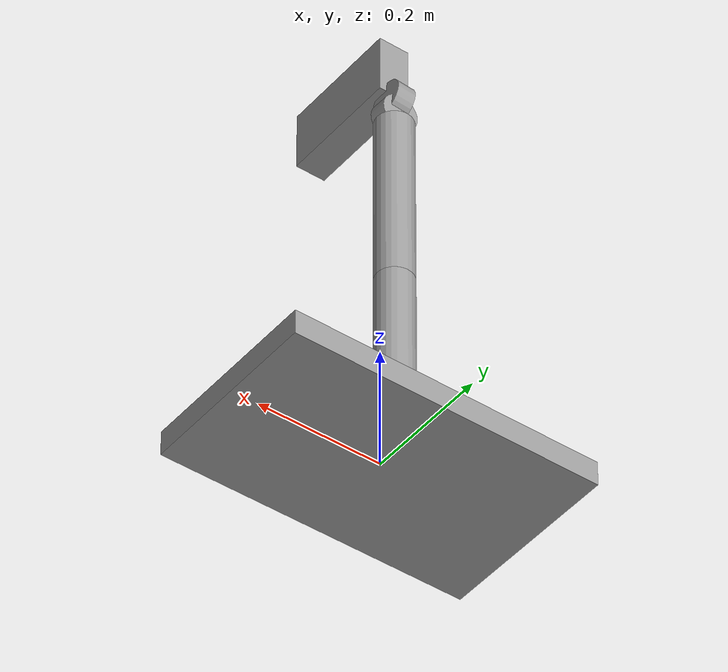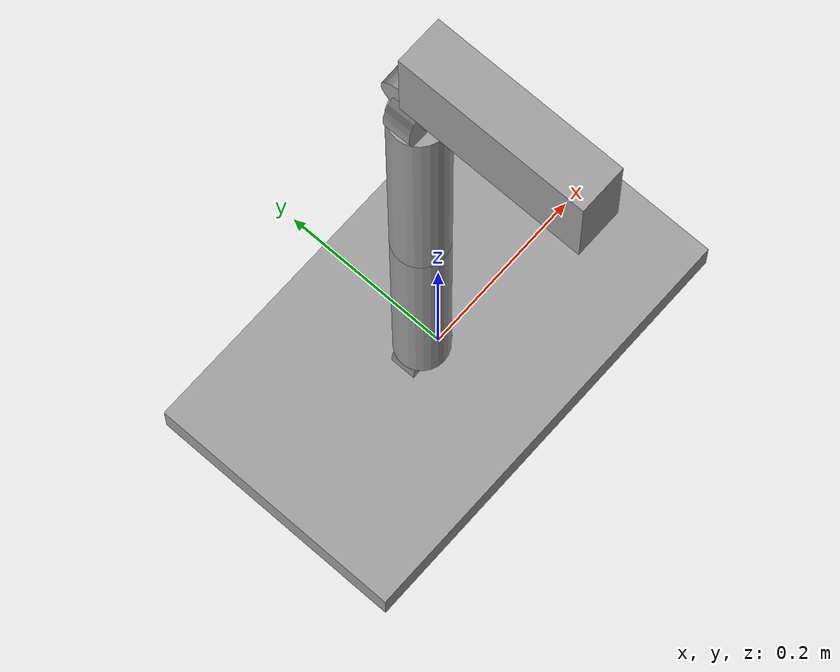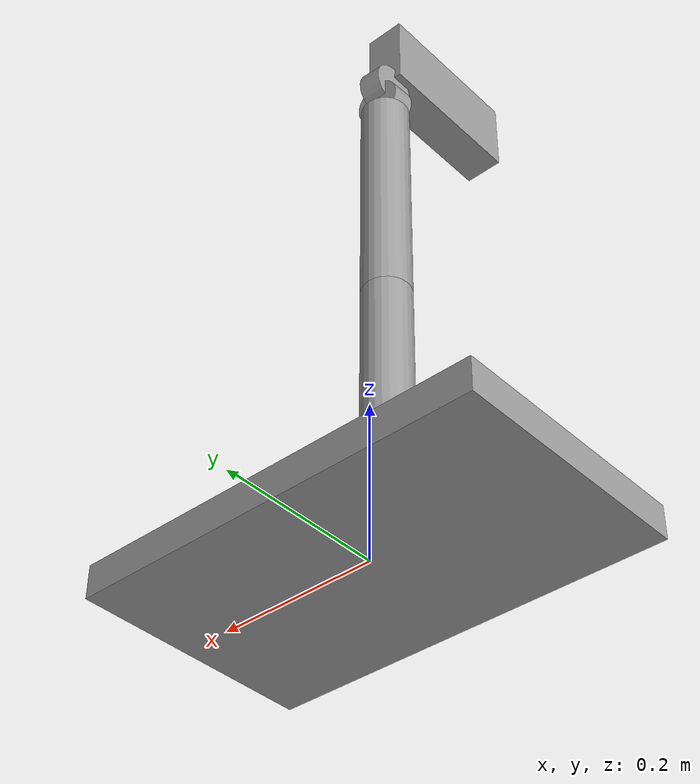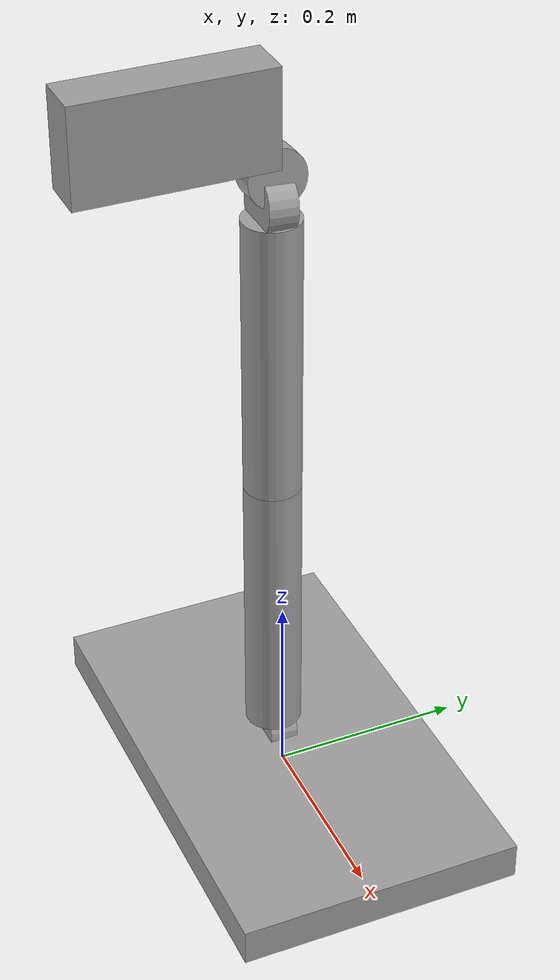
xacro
<robot xmlns:xacro="http://www.ros.org/wiki/xacro" name="stickbot_leg_6dof" >
    <xacro:include filename="$(find stickbot_leg_6dof)/models/stickbot_leg_6dof/xacro/stickbot_leg_6dof_base.xacro" />
    <stickbot_leg_6dof />

    <link name="world">
        <!-- Virtual Link -->
        <inertial>
            <mass value="0.1"/>
            <origin rpy="0 0 0" xyz="0 0 1.2"/>
            <inertia ixx="8.33333333333e-05" ixy="0.0" ixz="0.0" iyy="8.33333333333e-05" iyz="0.0" izz="0.000125"/>
        </inertial>
    </link>

    <joint name="footOffset" type="fixed">
        <origin rpy="0 0 0" xyz="0 0 0"/>
        <axis xyz="0 0 1"/>
        <parent link="world"/>
        <child link="Foot"/>
    </joint>
</robot>

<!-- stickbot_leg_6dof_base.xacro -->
<robot name="stickbot_leg_6dof" xmlns:controller="http://playerstage.sourceforge.net/gazebo/xmlschema/#controller" xmlns:interface="http://playerstage.sourceforge.net/gazebo/xmlschema/#interface" xmlns:sensor="http://playerstage.sourceforge.net/gazebo/xmlschema/#sensor" xmlns:xacro="http://playerstage.sourceforge.net/gazebo/xmlschema/#interface">

    <macro name="stickbot_leg_6dof">
        <link name="Foot">
            <inertial>
                <mass value="10"/>
                <origin xyz="0 0 0.0"/>
                <inertia ixx="0.008667" ixy="0" ixz="0" iyy="0.008667" iyz="0" izz="0.01667"/>
            </inertial>
            <visual>
                <origin rpy="0 0 0 " xyz="0 0 0.01"/>
                <geometry name="Foot">
                <box size="0.5 0.3 0.04"/> <!--NOTE: These dimensions don't match inertial dimensions -->
                </geometry>
                <material name="grey">
                    <color rgba="0.627 0.627 0.627 1"/>
                </material>
            </visual>
            <collision>
                <origin rpy="0 0 0 " xyz="0 0 0.02"/>
                <geometry name="Foot">
                    <box size="0.5 0.3 0.04"/>
                </geometry>
            </collision>
        </link>

        <joint name="AnkleRoll" type="continuous">
            <axis xyz="1 0 0"/>
            <origin rpy="0 0 0" xyz="-0.025 0 0.015"/>
            <parent link="Foot"/>
            <child link="robot_body_2"/>
            <limit effort="100" lower="-3.14" upper="3.14" velocity="1"/>
        </joint>

        <link name="robot_body_2">
            <inertial>
                <mass value="0.25"/>
                <origin xyz="0.0 0.0 0.015"/>
                <inertia ixx="0.00015" ixy="0" ixz="0" iyy="0.00015" iyz="0" izz="0.000225"/>
            </inertial>
            <visual>
                <origin rpy="1.507 0 0" xyz="0 0 0.015"/>
                <geometry name="robot_body_2">
                    <cylinder radius="0.03" length="0.03"/>
                </geometry>
                <material name="grey">
                    <color rgba="0.627 0.627 0.627 1"/>
                </material>
            </visual>
            <collision>
                <origin rpy="0 0 0.0 " xyz="0 0 0.015"/>
                <geometry name="robot_body_2">
                    <cylinder radius="0.03" length="0.03"/>
                </geometry>
            </collision>
        </link>

        <joint name="AnklePitch" type="continuous">
            <axis xyz="0 1 0"/>
            <origin rpy="0 0 0" xyz="0 0 0.03"/>
            <parent link="robot_body_2"/>
            <child link="robot_body_3"/>
            <limit effort="100" lower="-3.14" upper="3.14" velocity="1"/>
        </joint>

        <link name="robot_body_3">
            <inertial>
                <mass value="2.0"/>
                <origin xyz="-0.0 0 0.15"/>
                <inertia ixx="0.01545" ixy="0" ixz="0" iyy="0.01545" iyz="0" izz="0.0009"/>
            </inertial>
            <visual>
                <origin rpy="0 0 0 " xyz="0 0 0.15"/>
                <geometry name="robot_body_3">
                    <cylinder radius="0.03" length="0.3"/>
                </geometry>
                <material name="grey">
                    <color rgba="0.627 0.627 0.627 1"/>
                </material>
            </visual>
            <collision>
                <origin rpy="0 0 0 " xyz="0 0 0.15"/>
                <geometry name="robot_body_3">
                    <cylinder radius="0.03" length="0.3"/>
                </geometry>
            </collision>
        </link>

         <joint name="Knee" type="continuous">
            <axis xyz="0 1 0"/>
            <origin rpy="0 0 0" xyz="0 0 0.3"/>
            <parent link="robot_body_3"/>
            <child link="robot_body_4"/>
            <limit effort="100" lower="-3.14" upper="3.14" velocity="1"/>
        </joint>

        <link name="robot_body_4">
            <inertial>
                <mass value="2.0"/>
                <origin xyz="-0.0 0 0.15"/>
                <inertia ixx="0.01545" ixy="0" ixz="0" iyy="0.01545" iyz="0" izz="0.0009"/>
            </inertial>
            <visual>
                <origin rpy="0 0 0 " xyz="0 0 0.15"/>
                <geometry name="robot_body_4">
                    <cylinder radius="0.03" length="0.3"/>
                </geometry>
                <material name="grey">
                    <color rgba="0.627 0.627 0.627 1"/>
                </material>
            </visual>
            <collision>
                <origin rpy="0 0 0 " xyz="0 0 0.3"/>
                <geometry name="robot_body_4">
                    <cylinder radius="0.03" length="0.3"/>
                </geometry>
            </collision>
        </link>

        <joint name="HipAdductor" type="continuous">
            <axis xyz="1 0 0"/>
            <origin rpy="0 0 0" xyz="0 0 0.3"/>
            <parent link="robot_body_4"/>
            <child link="robot_body_5"/>
            <limit effort="100" lower="-3.14" upper="3.14" velocity="1"/>
        </joint>

        <link name="robot_body_5">
            <inertial>
                <mass value="0.25"/>
                <origin xyz="0.0 0.0 0.015"/>
                <inertia ixx="0.00015" ixy="0" ixz="0" iyy="0.00015" iyz="0" izz="0.000225"/>
            </inertial>
            <visual>
                <origin rpy="1.507 0 0" xyz="0 0 0.015"/>
                <geometry name="robot_body_5">
                    <cylinder radius="0.03" length="0.03"/>
                </geometry>
                <material name="grey">
                    <color rgba="0.627 0.627 0.627 1"/>
                </material>
            </visual>
            <collision>
                <origin rpy="1.507 0 0.0 " xyz="0 0 0.015"/>
                <geometry name="robot_body_5">
                    <cylinder radius="0.03" length="0.03"/>
                </geometry>
            </collision>
        </link>

        <joint name="HipExtensor" type="continuous">
            <axis xyz="0 1 0"/>
            <origin rpy="0 0 0" xyz="0 0 0.03"/>
            <parent link="robot_body_5"/>
            <child link="robot_body_6"/>
            <limit effort="100" lower="-3.14" upper="3.14" velocity="1"/>
        </joint>

        <link name="robot_body_6">
            <inertial>
                <mass value="0.25"/>
                <origin xyz="0.0 0.0 0.015"/>
                <inertia ixx="0.00015" ixy="0" ixz="0" iyy="0.00015" iyz="0" izz="0.000225"/>
            </inertial>
            <visual>
                <origin rpy="0 1.507 0" xyz="0 0 0.015"/>
                <geometry name="robot_body_6">
                    <cylinder radius="0.03" length="0.03"/>
                </geometry>
                <material name="grey">
                    <color rgba="0.627 0.627 0.627 1"/>
                </material>
            </visual>
            <collision>
                <origin rpy="1.507 0 0.0 " xyz="0 0 0.015"/>
                <geometry name="robot_body_6">
                    <cylinder radius="0.03" length="0.03"/>
                </geometry>
            </collision>
        </link>

        <joint name="HipSupinator" type="continuous">
            <axis xyz="0 0 1"/>
            <origin rpy="0 0 0" xyz="0 0.0 0.03"/>
            <parent link="robot_body_6"/>
            <child link="robot_body_7"/>
            <limit effort="100" lower="-3.14" upper="3.14" velocity="1"/>
        </joint>

        <link name="robot_body_7">
            <inertial>
                <mass value="3"/>
                <origin xyz="0 -0.1 0.05"/>
                <inertia ixx="0.008667" ixy="0" ixz="0" iyy="0.008667" iyz="0" izz="0.01667"/>
            </inertial>
            <visual>
                <origin rpy="0 0 0 " xyz="0.0 -0.1 0.05"/>
                <geometry name="robot_body_7">
                    <box size="0.05 0.2 0.1"/>
                </geometry>
                <material name="grey">
                    <color rgba="0.627 0.627 0.627 1"/>
                </material>
            </visual>
            <collision>
                <origin rpy="0 0 0 " xyz="0.0 -0.1 0.05"/>
                <geometry name="robot_body_7">
                    <box size="0.05 0.2 0.1"/>
                </geometry>
            </collision>
        </link>

        <gazebo reference="AnkleRoll">
            <provideFeedback value="true"/>
        </gazebo>
        <gazebo reference="AnklePitch">
            <provideFeedback value="true"/>
        </gazebo>
        <gazebo reference="Knee">
            <provideFeedback value="true"/>
        </gazebo>
        <gazebo reference="HipAdductor">
            <provideFeedback value="true"/>
        </gazebo>
        <gazebo reference="HipExtensor">
            <provideFeedback value="true"/>
        </gazebo>
        <gazebo reference="HipSupinator">
            <provideFeedback value="true"/>
        </gazebo>

    </macro>

</robot>
